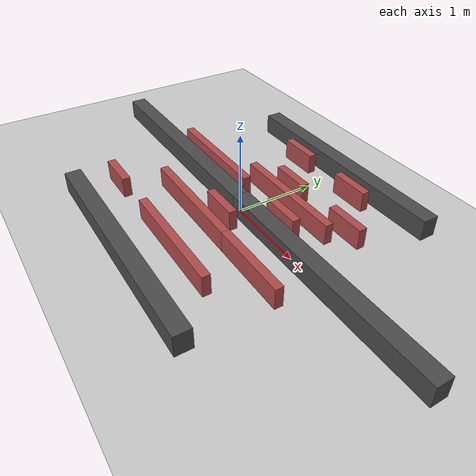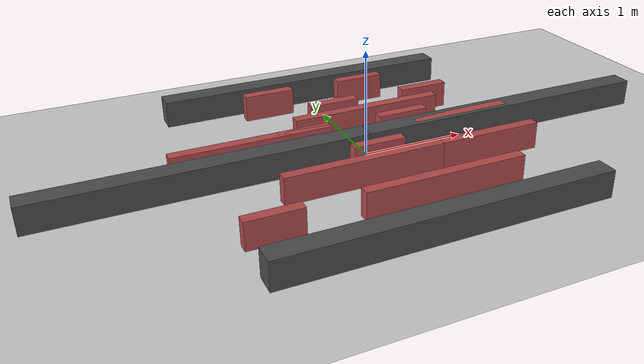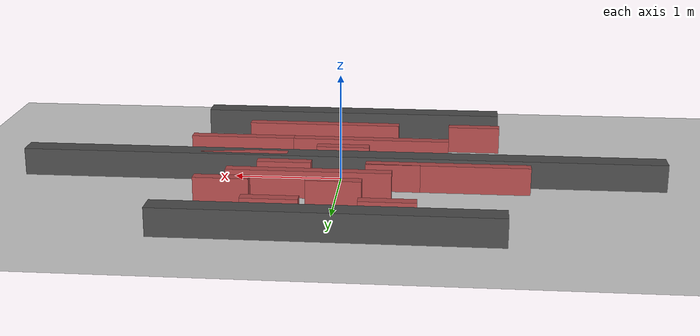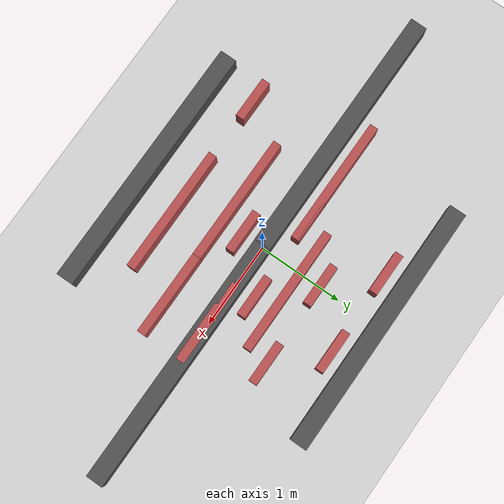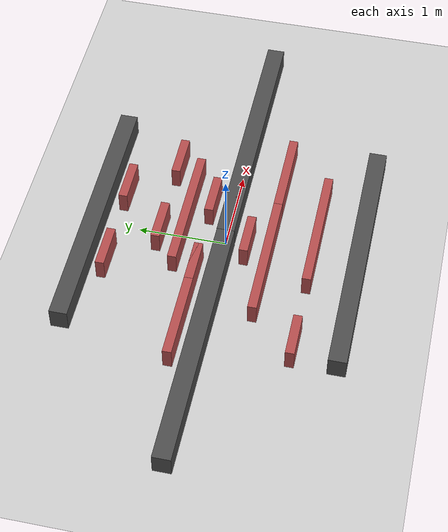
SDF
<?xml version="1.0" ?>
<sdf version="1.6">
  <world name="maze">
    <physics type="ode">
      <max_step_size>0.001</max_step_size>
      <real_time_factor>1</real_time_factor>
    </physics>
    <include>
      <uri>model://sun</uri>
    </include>
    <include>
      <uri>model://ground_plane</uri>
    </include>
    <model name="wall_north">
      <pose>0 1.5 0.0 0 0 0</pose>
      <static>true</static>
      <link name="link">
        <collision name="collision">
          <geometry>
            <box>
              <size>3.0 0.2 0.5</size>
            </box>
          </geometry>
        </collision>
        <visual name="visual">
          <geometry>
            <box>
              <size>3.0 0.2 0.5</size>
            </box>
          </geometry>
          <material>
            <diffuse>0.3 0.3 0.3 1</diffuse>
          </material>
        </visual>
      </link>
    </model>
    <model name="wall_south">
      <pose>0 -1.5 0.0 0 0 0</pose>
      <static>true</static>
      <link name="link">
        <collision name="collision">
          <geometry>
            <box>
              <size>3.0 0.2 0.5</size>
            </box>
          </geometry>
        </collision>
        <visual name="visual">
          <geometry>
            <box>
              <size>3.0 0.2 0.5</size>
            </box>
          </geometry>
          <material>
            <diffuse>0.3 0.3 0.3 1</diffuse>
          </material>
        </visual>
      </link>
    </model>
    <model name="wall_east">
      <pose>1.5 0 0.0 0 0 1.57</pose>
      <static>true</static>
      <link name="link">
        <collision name="collision">
          <geometry>
            <box>
              <size>0.2 3.0 0.5</size>
            </box>
          </geometry>
        </collision>
        <visual name="visual">
          <geometry>
            <box>
              <size>0.2 3.0 0.5</size>
            </box>
          </geometry>
          <material>
            <diffuse>0.3 0.3 0.3 1</diffuse>
          </material>
        </visual>
      </link>
    </model>
    <model name="wall_west">
      <pose>-1.5 0 0.0 0 0 1.57</pose>
      <static>true</static>
      <link name="link">
        <collision name="collision">
          <geometry>
            <box>
              <size>0.2 3.0 0.5</size>
            </box>
          </geometry>
        </collision>
        <visual name="visual">
          <geometry>
            <box>
              <size>0.2 3.0 0.5</size>
            </box>
          </geometry>
          <material>
            <diffuse>0.3 0.3 0.3 1</diffuse>
          </material>
        </visual>
      </link>
    </model>
    <model name="wall_4">
      <pose>1.0 0.0 0.0 0 0 0</pose>
      <static>true</static>
      <link name="link">
        <collision name="collision">
          <geometry>
            <box>
              <size>1.0 0.1 0.5</size>
            </box>
          </geometry>
        </collision>
        <visual name="visual">
          <geometry>
            <box>
              <size>1.0 0.1 0.5</size>
            </box>
          </geometry>
          <material>
            <diffuse>0.7 0.3 0.3 1</diffuse>
          </material>
        </visual>
      </link>
    </model>
    <model name="wall_5">
      <pose>0.25 0.5 0.0 0 0 0</pose>
      <static>true</static>
      <link name="link">
        <collision name="collision">
          <geometry>
            <box>
              <size>1.5 0.1 0.5</size>
            </box>
          </geometry>
        </collision>
        <visual name="visual">
          <geometry>
            <box>
              <size>1.5 0.1 0.5</size>
            </box>
          </geometry>
          <material>
            <diffuse>0.7 0.3 0.3 1</diffuse>
          </material>
        </visual>
      </link>
    </model>
    <model name="wall_6">
      <pose>-0.25 -0.5 0.0 0 0 0</pose>
      <static>true</static>
      <link name="link">
        <collision name="collision">
          <geometry>
            <box>
              <size>1.5 0.1 0.5</size>
            </box>
          </geometry>
        </collision>
        <visual name="visual">
          <geometry>
            <box>
              <size>1.5 0.1 0.5</size>
            </box>
          </geometry>
          <material>
            <diffuse>0.7 0.3 0.3 1</diffuse>
          </material>
        </visual>
      </link>
    </model>
    <model name="wall_7">
      <pose>0.25 -1.0 0.0 0 0 0</pose>
      <static>true</static>
      <link name="link">
        <collision name="collision">
          <geometry>
            <box>
              <size>1.5 0.1 0.5</size>
            </box>
          </geometry>
        </collision>
        <visual name="visual">
          <geometry>
            <box>
              <size>1.5 0.1 0.5</size>
            </box>
          </geometry>
          <material>
            <diffuse>0.7 0.3 0.3 1</diffuse>
          </material>
        </visual>
      </link>
    </model>
    <model name="wall_8">
      <pose>-1.25 -1.0 0.0 0 0 0</pose>
      <static>true</static>
      <link name="link">
        <collision name="collision">
          <geometry>
            <box>
              <size>0.5 0.1 0.5</size>
            </box>
          </geometry>
        </collision>
        <visual name="visual">
          <geometry>
            <box>
              <size>0.5 0.1 0.5</size>
            </box>
          </geometry>
          <material>
            <diffuse>0.7 0.3 0.3 1</diffuse>
          </material>
        </visual>
      </link>
    </model>
    <model name="wall_9">
      <pose>0.0 0.75 0.0 0 0 1.57</pose>
      <static>true</static>
      <link name="link">
        <collision name="collision">
          <geometry>
            <box>
              <size>0.1 0.5 0.5</size>
            </box>
          </geometry>
        </collision>
        <visual name="visual">
          <geometry>
            <box>
              <size>0.1 0.5 0.5</size>
            </box>
          </geometry>
          <material>
            <diffuse>0.7 0.3 0.3 1</diffuse>
          </material>
        </visual>
      </link>
    </model>
    <model name="wall_10">
      <pose>0.0 -0.25 0.0 0 0 1.57</pose>
      <static>true</static>
      <link name="link">
        <collision name="collision">
          <geometry>
            <box>
              <size>0.1 0.5 0.5</size>
            </box>
          </geometry>
        </collision>
        <visual name="visual">
          <geometry>
            <box>
              <size>0.1 0.5 0.5</size>
            </box>
          </geometry>
          <material>
            <diffuse>0.7 0.3 0.3 1</diffuse>
          </material>
        </visual>
      </link>
    </model>
    <model name="wall_11">
      <pose>0.5 0.25 0.0 0 0 1.57</pose>
      <static>true</static>
      <link name="link">
        <collision name="collision">
          <geometry>
            <box>
              <size>0.1 0.5 0.5</size>
            </box>
          </geometry>
        </collision>
        <visual name="visual">
          <geometry>
            <box>
              <size>0.1 0.5 0.5</size>
            </box>
          </geometry>
          <material>
            <diffuse>0.7 0.3 0.3 1</diffuse>
          </material>
        </visual>
      </link>
    </model>
    <model name="wall_12">
      <pose>0.5 1.25 0.0 0 0 1.57</pose>
      <static>true</static>
      <link name="link">
        <collision name="collision">
          <geometry>
            <box>
              <size>0.1 0.5 0.5</size>
            </box>
          </geometry>
        </collision>
        <visual name="visual">
          <geometry>
            <box>
              <size>0.1 0.5 0.5</size>
            </box>
          </geometry>
          <material>
            <diffuse>0.7 0.3 0.3 1</diffuse>
          </material>
        </visual>
      </link>
    </model>
    <model name="wall_13">
      <pose>1.0 0.75 0.0 0 0 1.57</pose>
      <static>true</static>
      <link name="link">
        <collision name="collision">
          <geometry>
            <box>
              <size>0.1 0.5 0.5</size>
            </box>
          </geometry>
        </collision>
        <visual name="visual">
          <geometry>
            <box>
              <size>0.1 0.5 0.5</size>
            </box>
          </geometry>
          <material>
            <diffuse>0.7 0.3 0.3 1</diffuse>
          </material>
        </visual>
      </link>
    </model>
    <model name="wall_14">
      <pose>1.0 -0.5 0.0 0 0 1.57</pose>
      <static>true</static>
      <link name="link">
        <collision name="collision">
          <geometry>
            <box>
              <size>0.1 1.0 0.5</size>
            </box>
          </geometry>
        </collision>
        <visual name="visual">
          <geometry>
            <box>
              <size>0.1 1.0 0.5</size>
            </box>
          </geometry>
          <material>
            <diffuse>0.7 0.3 0.3 1</diffuse>
          </material>
        </visual>
      </link>
    </model>
    <model name="wall_15">
      <pose>-0.5 0.25 0.0 0 0 1.57</pose>
      <static>true</static>
      <link name="link">
        <collision name="collision">
          <geometry>
            <box>
              <size>0.1 0.5 0.5</size>
            </box>
          </geometry>
        </collision>
        <visual name="visual">
          <geometry>
            <box>
              <size>0.1 0.5 0.5</size>
            </box>
          </geometry>
          <material>
            <diffuse>0.7 0.3 0.3 1</diffuse>
          </material>
        </visual>
      </link>
    </model>
    <model name="wall_16">
      <pose>-0.5 1.25 0.0 0 0 1.57</pose>
      <static>true</static>
      <link name="link">
        <collision name="collision">
          <geometry>
            <box>
              <size>0.1 0.5 0.5</size>
            </box>
          </geometry>
        </collision>
        <visual name="visual">
          <geometry>
            <box>
              <size>0.1 0.5 0.5</size>
            </box>
          </geometry>
          <material>
            <diffuse>0.7 0.3 0.3 1</diffuse>
          </material>
        </visual>
      </link>
    </model>
    <model name="wall_17">
      <pose>-1.0 0.25 0.0 0 0 1.57</pose>
      <static>true</static>
      <link name="link">
        <collision name="collision">
          <geometry>
            <box>
              <size>0.1 1.5 0.5</size>
            </box>
          </geometry>
        </collision>
        <visual name="visual">
          <geometry>
            <box>
              <size>0.1 1.5 0.5</size>
            </box>
          </geometry>
          <material>
            <diffuse>0.7 0.3 0.3 1</diffuse>
          </material>
        </visual>
      </link>
    </model>
  </world>
</sdf>
